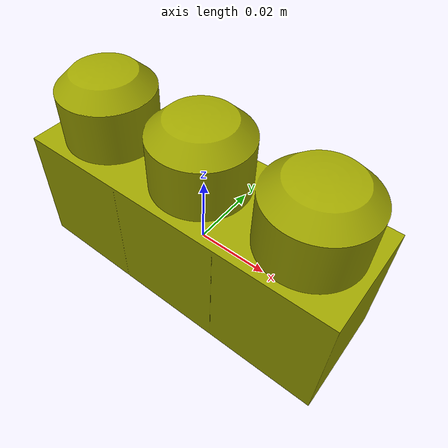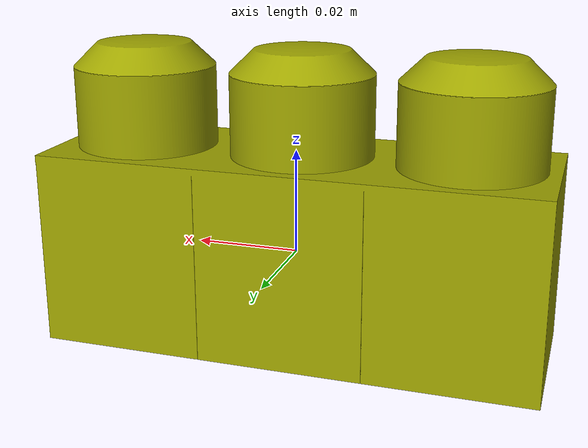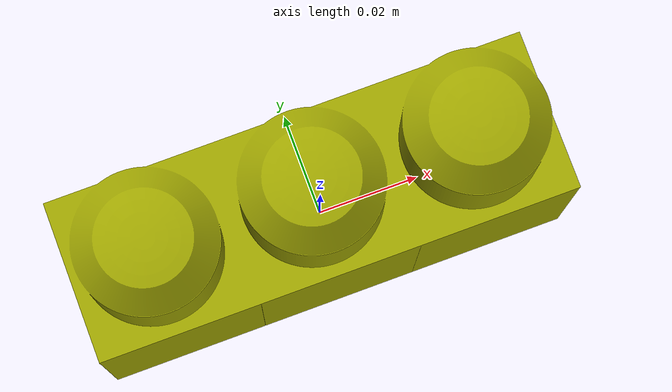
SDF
<?xml version='1.0'?>
<sdf version='1.4'> <!-- changed from 1.5 to be compatible with Gazebo2 -->
  <model name="megabloks1x3_yellow">
    <static>false</static>
    <link name="blok">
      <pose>0 0 0 0 0 0</pose>
      <collision name="collision">
        <geometry>
          <box>
	  <size>0.093900000000000011 0.0313 0.0426</size>
          </box>
        </geometry>
	<surface>
	  <friction>
	    <ode>
	      <mu>0.4</mu>
	    </ode>
	  </friction>
	</surface>
      </collision>
      <inertial>
      <mass value="0.0090000000000000011"/>
	<inertia ixx="0.00001" iyy="0.00001" izz="0.00001" />
      </inertial>
      <visual name="visual">
        <pose>0 0 -0.02 0 0 0</pose>
        <geometry>
          <mesh>
            <uri>model://megabloks1x3_yellow/meshes/model.dae</uri>
          </mesh>
        </geometry>
      </visual>
    </link>
  </model>
</sdf>
